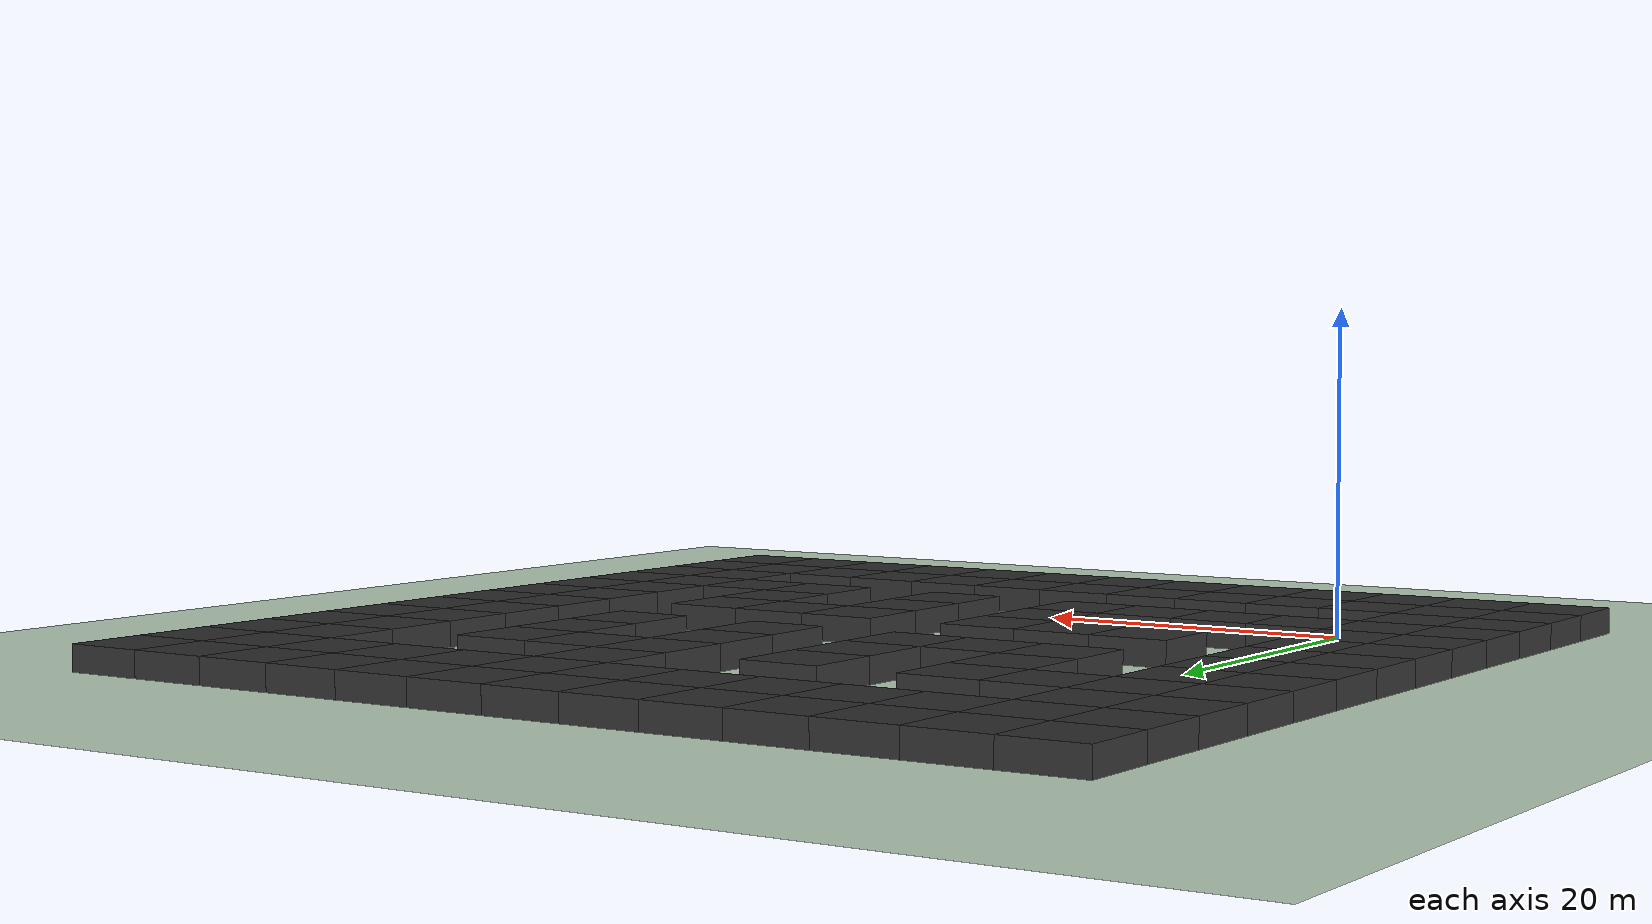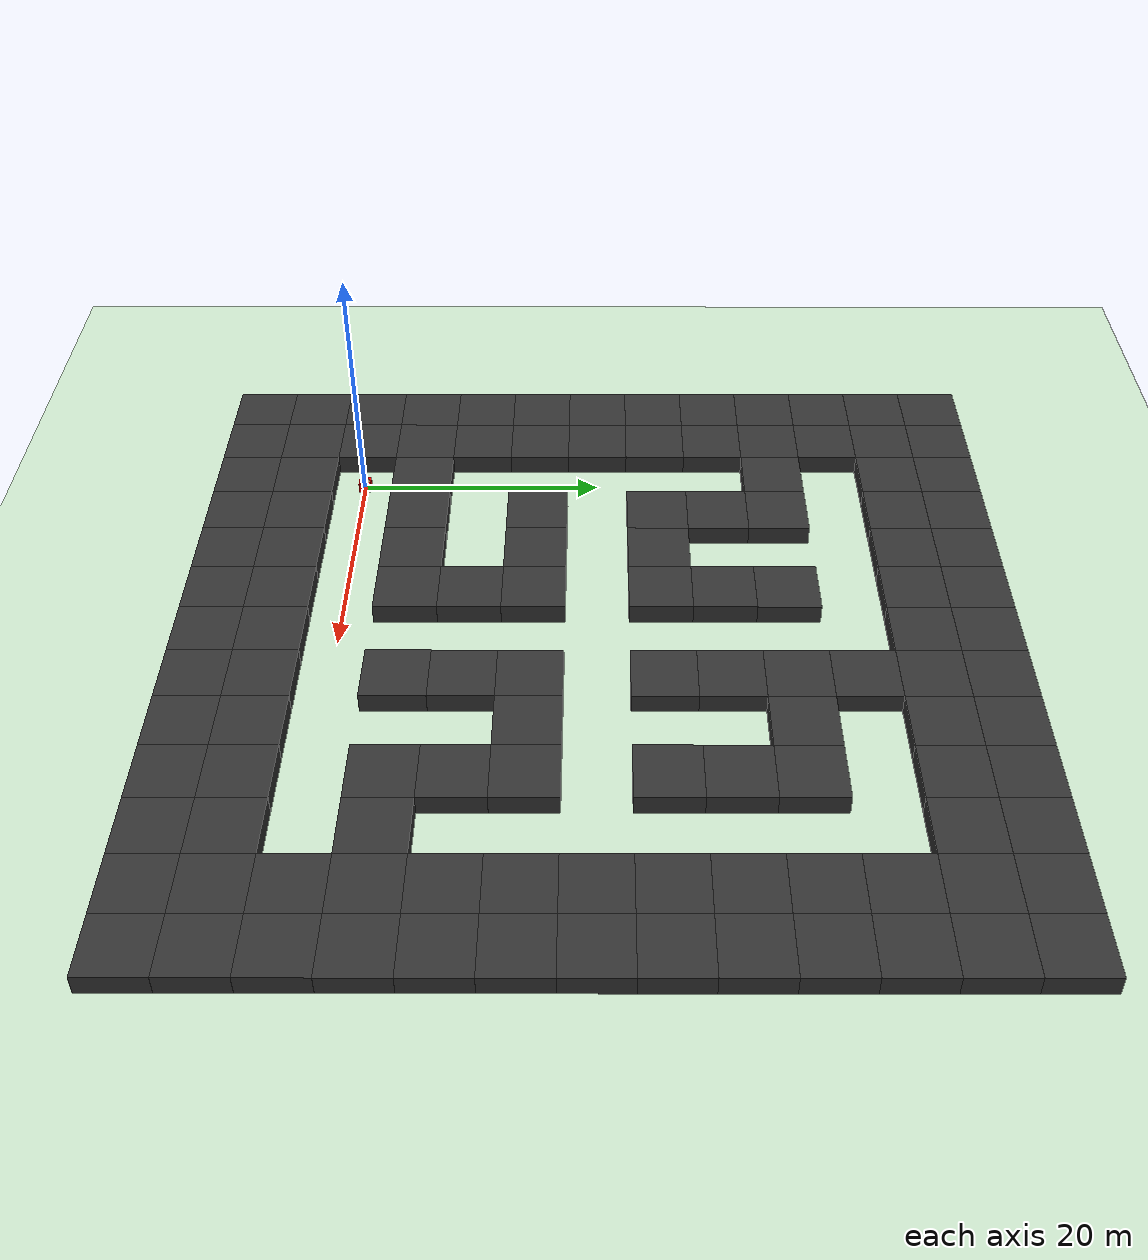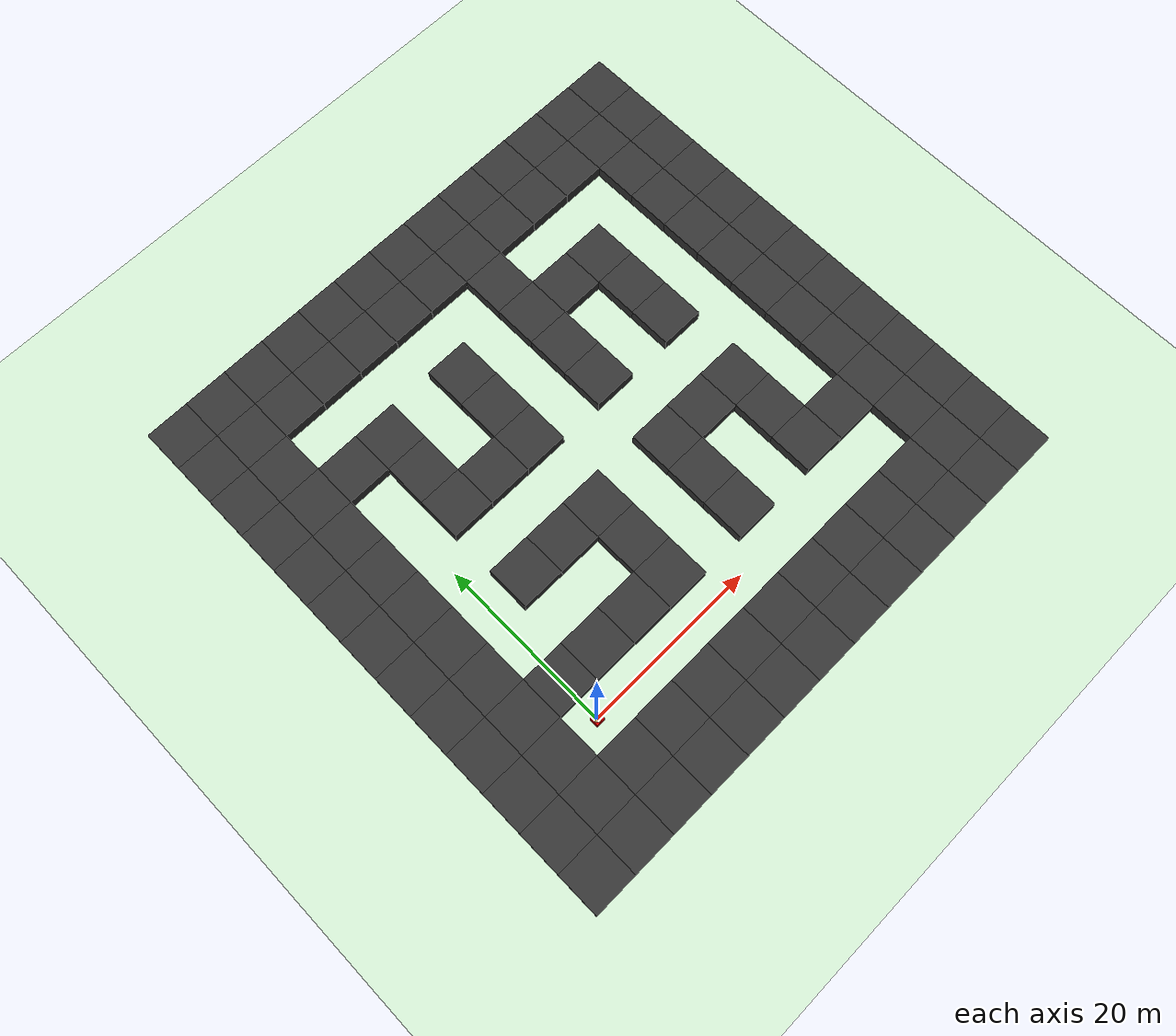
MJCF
<mujoco>
  <compiler angle="degree" coordinate="local" inertiafromgeom="true"/>
  <option integrator="RK4" timestep="0.02"/>
  <default>
    <joint armature="0" damping="0" limited="false"/>
    <geom conaffinity="0" condim="3" density="100" friction="1 0.5 0.5" margin="0" rgba="0.8 0.6 0.4 1"/>
  </default>
  <asset>
    <texture name="texplane" type="2d" builtin="flat" rgb1="0.95 0.95 0.95"  width="5120" height="5120"/>
    <material name="MatPlane" reflectance="0" texture="texplane" texrepeat="1 1" texuniform="true"  />
  </asset>
  <worldbody>
  <light directional="false" diffuse=".3 .3 .3" specular="0.3 0.3 0.3" pos="0 0 1000" />
  <camera name="top_view" mode="trackcom" pos="0 0 30" xyaxes="1 0 0 0 1 0" fovy = "45"/>

                <geom conaffinity="1" type="box" name="wall_0_0" size="2.5 2.5 1" pos="-10.0 -10.0 0.5" rgba="0.2 0.2 0.2 1" />

                <geom conaffinity="1" type="box" name="wall_0_1" size="2.5 2.5 1" pos="-10.0 -5.0 0.5" rgba="0.2 0.2 0.2 1" />

                <geom conaffinity="1" type="box" name="wall_0_2" size="2.5 2.5 1" pos="-10.0 0.0 0.5" rgba="0.2 0.2 0.2 1" />

                <geom conaffinity="1" type="box" name="wall_0_3" size="2.5 2.5 1" pos="-10.0 5.0 0.5" rgba="0.2 0.2 0.2 1" />

                <geom conaffinity="1" type="box" name="wall_0_4" size="2.5 2.5 1" pos="-10.0 10.0 0.5" rgba="0.2 0.2 0.2 1" />

                <geom conaffinity="1" type="box" name="wall_0_5" size="2.5 2.5 1" pos="-10.0 15.0 0.5" rgba="0.2 0.2 0.2 1" />

                <geom conaffinity="1" type="box" name="wall_0_6" size="2.5 2.5 1" pos="-10.0 20.0 0.5" rgba="0.2 0.2 0.2 1" />

                <geom conaffinity="1" type="box" name="wall_0_7" size="2.5 2.5 1" pos="-10.0 25.0 0.5" rgba="0.2 0.2 0.2 1" />

                <geom conaffinity="1" type="box" name="wall_0_8" size="2.5 2.5 1" pos="-10.0 30.0 0.5" rgba="0.2 0.2 0.2 1" />

                <geom conaffinity="1" type="box" name="wall_0_9" size="2.5 2.5 1" pos="-10.0 35.0 0.5" rgba="0.2 0.2 0.2 1" />

                <geom conaffinity="1" type="box" name="wall_0_10" size="2.5 2.5 1" pos="-10.0 40.0 0.5" rgba="0.2 0.2 0.2 1" />

                <geom conaffinity="1" type="box" name="wall_0_11" size="2.5 2.5 1" pos="-10.0 45.0 0.5" rgba="0.2 0.2 0.2 1" />

                <geom conaffinity="1" type="box" name="wall_0_12" size="2.5 2.5 1" pos="-10.0 50.0 0.5" rgba="0.2 0.2 0.2 1" />

                <geom conaffinity="1" type="box" name="wall_1_0" size="2.5 2.5 1" pos="-5.0 -10.0 0.5" rgba="0.2 0.2 0.2 1" />

                <geom conaffinity="1" type="box" name="wall_1_1" size="2.5 2.5 1" pos="-5.0 -5.0 0.5" rgba="0.2 0.2 0.2 1" />

                <geom conaffinity="1" type="box" name="wall_1_2" size="2.5 2.5 1" pos="-5.0 0.0 0.5" rgba="0.2 0.2 0.2 1" />

                <geom conaffinity="1" type="box" name="wall_1_3" size="2.5 2.5 1" pos="-5.0 5.0 0.5" rgba="0.2 0.2 0.2 1" />

                <geom conaffinity="1" type="box" name="wall_1_4" size="2.5 2.5 1" pos="-5.0 10.0 0.5" rgba="0.2 0.2 0.2 1" />

                <geom conaffinity="1" type="box" name="wall_1_5" size="2.5 2.5 1" pos="-5.0 15.0 0.5" rgba="0.2 0.2 0.2 1" />

                <geom conaffinity="1" type="box" name="wall_1_6" size="2.5 2.5 1" pos="-5.0 20.0 0.5" rgba="0.2 0.2 0.2 1" />

                <geom conaffinity="1" type="box" name="wall_1_7" size="2.5 2.5 1" pos="-5.0 25.0 0.5" rgba="0.2 0.2 0.2 1" />

                <geom conaffinity="1" type="box" name="wall_1_8" size="2.5 2.5 1" pos="-5.0 30.0 0.5" rgba="0.2 0.2 0.2 1" />

                <geom conaffinity="1" type="box" name="wall_1_9" size="2.5 2.5 1" pos="-5.0 35.0 0.5" rgba="0.2 0.2 0.2 1" />

                <geom conaffinity="1" type="box" name="wall_1_10" size="2.5 2.5 1" pos="-5.0 40.0 0.5" rgba="0.2 0.2 0.2 1" />

                <geom conaffinity="1" type="box" name="wall_1_11" size="2.5 2.5 1" pos="-5.0 45.0 0.5" rgba="0.2 0.2 0.2 1" />

                <geom conaffinity="1" type="box" name="wall_1_12" size="2.5 2.5 1" pos="-5.0 50.0 0.5" rgba="0.2 0.2 0.2 1" />

                <geom conaffinity="1" type="box" name="wall_2_0" size="2.5 2.5 1" pos="0.0 -10.0 0.5" rgba="0.2 0.2 0.2 1" />

                <geom conaffinity="1" type="box" name="wall_2_1" size="2.5 2.5 1" pos="0.0 -5.0 0.5" rgba="0.2 0.2 0.2 1" />

                <geom conaffinity="1" type="box" name="wall_2_3" size="2.5 2.5 1" pos="0.0 5.0 0.5" rgba="0.2 0.2 0.2 1" />

                <geom conaffinity="1" type="box" name="wall_2_9" size="2.5 2.5 1" pos="0.0 35.0 0.5" rgba="0.2 0.2 0.2 1" />

                <geom conaffinity="1" type="box" name="wall_2_11" size="2.5 2.5 1" pos="0.0 45.0 0.5" rgba="0.2 0.2 0.2 1" />

                <geom conaffinity="1" type="box" name="wall_2_12" size="2.5 2.5 1" pos="0.0 50.0 0.5" rgba="0.2 0.2 0.2 1" />

                <geom conaffinity="1" type="box" name="wall_3_0" size="2.5 2.5 1" pos="5.0 -10.0 0.5" rgba="0.2 0.2 0.2 1" />

                <geom conaffinity="1" type="box" name="wall_3_1" size="2.5 2.5 1" pos="5.0 -5.0 0.5" rgba="0.2 0.2 0.2 1" />

                <geom conaffinity="1" type="box" name="wall_3_3" size="2.5 2.5 1" pos="5.0 5.0 0.5" rgba="0.2 0.2 0.2 1" />

                <geom conaffinity="1" type="box" name="wall_3_5" size="2.5 2.5 1" pos="5.0 15.0 0.5" rgba="0.2 0.2 0.2 1" />

                <geom conaffinity="1" type="box" name="wall_3_7" size="2.5 2.5 1" pos="5.0 25.0 0.5" rgba="0.2 0.2 0.2 1" />

                <geom conaffinity="1" type="box" name="wall_3_8" size="2.5 2.5 1" pos="5.0 30.0 0.5" rgba="0.2 0.2 0.2 1" />

                <geom conaffinity="1" type="box" name="wall_3_9" size="2.5 2.5 1" pos="5.0 35.0 0.5" rgba="0.2 0.2 0.2 1" />

                <geom conaffinity="1" type="box" name="wall_3_11" size="2.5 2.5 1" pos="5.0 45.0 0.5" rgba="0.2 0.2 0.2 1" />

                <geom conaffinity="1" type="box" name="wall_3_12" size="2.5 2.5 1" pos="5.0 50.0 0.5" rgba="0.2 0.2 0.2 1" />

                <geom conaffinity="1" type="box" name="wall_4_0" size="2.5 2.5 1" pos="10.0 -10.0 0.5" rgba="0.2 0.2 0.2 1" />

                <geom conaffinity="1" type="box" name="wall_4_1" size="2.5 2.5 1" pos="10.0 -5.0 0.5" rgba="0.2 0.2 0.2 1" />

                <geom conaffinity="1" type="box" name="wall_4_3" size="2.5 2.5 1" pos="10.0 5.0 0.5" rgba="0.2 0.2 0.2 1" />

                <geom conaffinity="1" type="box" name="wall_4_5" size="2.5 2.5 1" pos="10.0 15.0 0.5" rgba="0.2 0.2 0.2 1" />

                <geom conaffinity="1" type="box" name="wall_4_7" size="2.5 2.5 1" pos="10.0 25.0 0.5" rgba="0.2 0.2 0.2 1" />

                <geom conaffinity="1" type="box" name="wall_4_11" size="2.5 2.5 1" pos="10.0 45.0 0.5" rgba="0.2 0.2 0.2 1" />

                <geom conaffinity="1" type="box" name="wall_4_12" size="2.5 2.5 1" pos="10.0 50.0 0.5" rgba="0.2 0.2 0.2 1" />

                <geom conaffinity="1" type="box" name="wall_5_0" size="2.5 2.5 1" pos="15.0 -10.0 0.5" rgba="0.2 0.2 0.2 1" />

                <geom conaffinity="1" type="box" name="wall_5_1" size="2.5 2.5 1" pos="15.0 -5.0 0.5" rgba="0.2 0.2 0.2 1" />

                <geom conaffinity="1" type="box" name="wall_5_3" size="2.5 2.5 1" pos="15.0 5.0 0.5" rgba="0.2 0.2 0.2 1" />

                <geom conaffinity="1" type="box" name="wall_5_4" size="2.5 2.5 1" pos="15.0 10.0 0.5" rgba="0.2 0.2 0.2 1" />

                <geom conaffinity="1" type="box" name="wall_5_5" size="2.5 2.5 1" pos="15.0 15.0 0.5" rgba="0.2 0.2 0.2 1" />

                <geom conaffinity="1" type="box" name="wall_5_7" size="2.5 2.5 1" pos="15.0 25.0 0.5" rgba="0.2 0.2 0.2 1" />

                <geom conaffinity="1" type="box" name="wall_5_8" size="2.5 2.5 1" pos="15.0 30.0 0.5" rgba="0.2 0.2 0.2 1" />

                <geom conaffinity="1" type="box" name="wall_5_9" size="2.5 2.5 1" pos="15.0 35.0 0.5" rgba="0.2 0.2 0.2 1" />

                <geom conaffinity="1" type="box" name="wall_5_11" size="2.5 2.5 1" pos="15.0 45.0 0.5" rgba="0.2 0.2 0.2 1" />

                <geom conaffinity="1" type="box" name="wall_5_12" size="2.5 2.5 1" pos="15.0 50.0 0.5" rgba="0.2 0.2 0.2 1" />

                <geom conaffinity="1" type="box" name="wall_6_0" size="2.5 2.5 1" pos="20.0 -10.0 0.5" rgba="0.2 0.2 0.2 1" />

                <geom conaffinity="1" type="box" name="wall_6_1" size="2.5 2.5 1" pos="20.0 -5.0 0.5" rgba="0.2 0.2 0.2 1" />

                <geom conaffinity="1" type="box" name="wall_6_11" size="2.5 2.5 1" pos="20.0 45.0 0.5" rgba="0.2 0.2 0.2 1" />

                <geom conaffinity="1" type="box" name="wall_6_12" size="2.5 2.5 1" pos="20.0 50.0 0.5" rgba="0.2 0.2 0.2 1" />

                <geom conaffinity="1" type="box" name="wall_7_0" size="2.5 2.5 1" pos="25.0 -10.0 0.5" rgba="0.2 0.2 0.2 1" />

                <geom conaffinity="1" type="box" name="wall_7_1" size="2.5 2.5 1" pos="25.0 -5.0 0.5" rgba="0.2 0.2 0.2 1" />

                <geom conaffinity="1" type="box" name="wall_7_3" size="2.5 2.5 1" pos="25.0 5.0 0.5" rgba="0.2 0.2 0.2 1" />

                <geom conaffinity="1" type="box" name="wall_7_4" size="2.5 2.5 1" pos="25.0 10.0 0.5" rgba="0.2 0.2 0.2 1" />

                <geom conaffinity="1" type="box" name="wall_7_5" size="2.5 2.5 1" pos="25.0 15.0 0.5" rgba="0.2 0.2 0.2 1" />

                <geom conaffinity="1" type="box" name="wall_7_7" size="2.5 2.5 1" pos="25.0 25.0 0.5" rgba="0.2 0.2 0.2 1" />

                <geom conaffinity="1" type="box" name="wall_7_8" size="2.5 2.5 1" pos="25.0 30.0 0.5" rgba="0.2 0.2 0.2 1" />

                <geom conaffinity="1" type="box" name="wall_7_9" size="2.5 2.5 1" pos="25.0 35.0 0.5" rgba="0.2 0.2 0.2 1" />

                <geom conaffinity="1" type="box" name="wall_7_10" size="2.5 2.5 1" pos="25.0 40.0 0.5" rgba="0.2 0.2 0.2 1" />

                <geom conaffinity="1" type="box" name="wall_7_11" size="2.5 2.5 1" pos="25.0 45.0 0.5" rgba="0.2 0.2 0.2 1" />

                <geom conaffinity="1" type="box" name="wall_7_12" size="2.5 2.5 1" pos="25.0 50.0 0.5" rgba="0.2 0.2 0.2 1" />

                <geom conaffinity="1" type="box" name="wall_8_0" size="2.5 2.5 1" pos="30.0 -10.0 0.5" rgba="0.2 0.2 0.2 1" />

                <geom conaffinity="1" type="box" name="wall_8_1" size="2.5 2.5 1" pos="30.0 -5.0 0.5" rgba="0.2 0.2 0.2 1" />

                <geom conaffinity="1" type="box" name="wall_8_5" size="2.5 2.5 1" pos="30.0 15.0 0.5" rgba="0.2 0.2 0.2 1" />

                <geom conaffinity="1" type="box" name="wall_8_9" size="2.5 2.5 1" pos="30.0 35.0 0.5" rgba="0.2 0.2 0.2 1" />

                <geom conaffinity="1" type="box" name="wall_8_11" size="2.5 2.5 1" pos="30.0 45.0 0.5" rgba="0.2 0.2 0.2 1" />

                <geom conaffinity="1" type="box" name="wall_8_12" size="2.5 2.5 1" pos="30.0 50.0 0.5" rgba="0.2 0.2 0.2 1" />

                <geom conaffinity="1" type="box" name="wall_9_0" size="2.5 2.5 1" pos="35.0 -10.0 0.5" rgba="0.2 0.2 0.2 1" />

                <geom conaffinity="1" type="box" name="wall_9_1" size="2.5 2.5 1" pos="35.0 -5.0 0.5" rgba="0.2 0.2 0.2 1" />

                <geom conaffinity="1" type="box" name="wall_9_3" size="2.5 2.5 1" pos="35.0 5.0 0.5" rgba="0.2 0.2 0.2 1" />

                <geom conaffinity="1" type="box" name="wall_9_4" size="2.5 2.5 1" pos="35.0 10.0 0.5" rgba="0.2 0.2 0.2 1" />

                <geom conaffinity="1" type="box" name="wall_9_5" size="2.5 2.5 1" pos="35.0 15.0 0.5" rgba="0.2 0.2 0.2 1" />

                <geom conaffinity="1" type="box" name="wall_9_7" size="2.5 2.5 1" pos="35.0 25.0 0.5" rgba="0.2 0.2 0.2 1" />

                <geom conaffinity="1" type="box" name="wall_9_8" size="2.5 2.5 1" pos="35.0 30.0 0.5" rgba="0.2 0.2 0.2 1" />

                <geom conaffinity="1" type="box" name="wall_9_9" size="2.5 2.5 1" pos="35.0 35.0 0.5" rgba="0.2 0.2 0.2 1" />

                <geom conaffinity="1" type="box" name="wall_9_11" size="2.5 2.5 1" pos="35.0 45.0 0.5" rgba="0.2 0.2 0.2 1" />

                <geom conaffinity="1" type="box" name="wall_9_12" size="2.5 2.5 1" pos="35.0 50.0 0.5" rgba="0.2 0.2 0.2 1" />

                <geom conaffinity="1" type="box" name="wall_10_0" size="2.5 2.5 1" pos="40.0 -10.0 0.5" rgba="0.2 0.2 0.2 1" />

                <geom conaffinity="1" type="box" name="wall_10_1" size="2.5 2.5 1" pos="40.0 -5.0 0.5" rgba="0.2 0.2 0.2 1" />

                <geom conaffinity="1" type="box" name="wall_10_3" size="2.5 2.5 1" pos="40.0 5.0 0.5" rgba="0.2 0.2 0.2 1" />

                <geom conaffinity="1" type="box" name="wall_10_11" size="2.5 2.5 1" pos="40.0 45.0 0.5" rgba="0.2 0.2 0.2 1" />

                <geom conaffinity="1" type="box" name="wall_10_12" size="2.5 2.5 1" pos="40.0 50.0 0.5" rgba="0.2 0.2 0.2 1" />

                <geom conaffinity="1" type="box" name="wall_11_0" size="2.5 2.5 1" pos="45.0 -10.0 0.5" rgba="0.2 0.2 0.2 1" />

                <geom conaffinity="1" type="box" name="wall_11_1" size="2.5 2.5 1" pos="45.0 -5.0 0.5" rgba="0.2 0.2 0.2 1" />

                <geom conaffinity="1" type="box" name="wall_11_2" size="2.5 2.5 1" pos="45.0 0.0 0.5" rgba="0.2 0.2 0.2 1" />

                <geom conaffinity="1" type="box" name="wall_11_3" size="2.5 2.5 1" pos="45.0 5.0 0.5" rgba="0.2 0.2 0.2 1" />

                <geom conaffinity="1" type="box" name="wall_11_4" size="2.5 2.5 1" pos="45.0 10.0 0.5" rgba="0.2 0.2 0.2 1" />

                <geom conaffinity="1" type="box" name="wall_11_5" size="2.5 2.5 1" pos="45.0 15.0 0.5" rgba="0.2 0.2 0.2 1" />

                <geom conaffinity="1" type="box" name="wall_11_6" size="2.5 2.5 1" pos="45.0 20.0 0.5" rgba="0.2 0.2 0.2 1" />

                <geom conaffinity="1" type="box" name="wall_11_7" size="2.5 2.5 1" pos="45.0 25.0 0.5" rgba="0.2 0.2 0.2 1" />

                <geom conaffinity="1" type="box" name="wall_11_8" size="2.5 2.5 1" pos="45.0 30.0 0.5" rgba="0.2 0.2 0.2 1" />

                <geom conaffinity="1" type="box" name="wall_11_9" size="2.5 2.5 1" pos="45.0 35.0 0.5" rgba="0.2 0.2 0.2 1" />

                <geom conaffinity="1" type="box" name="wall_11_10" size="2.5 2.5 1" pos="45.0 40.0 0.5" rgba="0.2 0.2 0.2 1" />

                <geom conaffinity="1" type="box" name="wall_11_11" size="2.5 2.5 1" pos="45.0 45.0 0.5" rgba="0.2 0.2 0.2 1" />

                <geom conaffinity="1" type="box" name="wall_11_12" size="2.5 2.5 1" pos="45.0 50.0 0.5" rgba="0.2 0.2 0.2 1" />

                <geom conaffinity="1" type="box" name="wall_12_0" size="2.5 2.5 1" pos="50.0 -10.0 0.5" rgba="0.2 0.2 0.2 1" />

                <geom conaffinity="1" type="box" name="wall_12_1" size="2.5 2.5 1" pos="50.0 -5.0 0.5" rgba="0.2 0.2 0.2 1" />

                <geom conaffinity="1" type="box" name="wall_12_2" size="2.5 2.5 1" pos="50.0 0.0 0.5" rgba="0.2 0.2 0.2 1" />

                <geom conaffinity="1" type="box" name="wall_12_3" size="2.5 2.5 1" pos="50.0 5.0 0.5" rgba="0.2 0.2 0.2 1" />

                <geom conaffinity="1" type="box" name="wall_12_4" size="2.5 2.5 1" pos="50.0 10.0 0.5" rgba="0.2 0.2 0.2 1" />

                <geom conaffinity="1" type="box" name="wall_12_5" size="2.5 2.5 1" pos="50.0 15.0 0.5" rgba="0.2 0.2 0.2 1" />

                <geom conaffinity="1" type="box" name="wall_12_6" size="2.5 2.5 1" pos="50.0 20.0 0.5" rgba="0.2 0.2 0.2 1" />

                <geom conaffinity="1" type="box" name="wall_12_7" size="2.5 2.5 1" pos="50.0 25.0 0.5" rgba="0.2 0.2 0.2 1" />

                <geom conaffinity="1" type="box" name="wall_12_8" size="2.5 2.5 1" pos="50.0 30.0 0.5" rgba="0.2 0.2 0.2 1" />

                <geom conaffinity="1" type="box" name="wall_12_9" size="2.5 2.5 1" pos="50.0 35.0 0.5" rgba="0.2 0.2 0.2 1" />

                <geom conaffinity="1" type="box" name="wall_12_10" size="2.5 2.5 1" pos="50.0 40.0 0.5" rgba="0.2 0.2 0.2 1" />

                <geom conaffinity="1" type="box" name="wall_12_11" size="2.5 2.5 1" pos="50.0 45.0 0.5" rgba="0.2 0.2 0.2 1" />

                <geom conaffinity="1" type="box" name="wall_12_12" size="2.5 2.5 1" pos="50.0 50.0 0.5" rgba="0.2 0.2 0.2 1" />

  <geom name="Goal" pos="0 0 0.25" size="0.5 0.5 0.5" type="box" rgba="1 0 0 1"/>
    <light cutoff="100" diffuse="1 1 1" dir="-0 0 -1.3" directional="true" exponent="1" pos="0 0 1.3" specular=".1 .1 .1"/>
    <geom conaffinity="1" condim="3" material="MatPlane" name="floor" pos="0 0 0" rgba="0.8 0.9 0.8 1" size="300 300 30" type="plane"/>
    <body name="torso" pos="0 0 0">

      <geom name="pointbody" pos="0 0 0.5" size="0.5" type="sphere"/>
      <geom name="pointarrow" pos="0.6 0 0.5" size="0.5 0.1 0.1" rgba="1 0 0 1" type="box"/>
      <joint axis="1 0 0" name="ballx" pos="0 0 0" type="slide"/>
      <joint axis="0 1 0" name="bally" pos="0 0 0" type="slide"/>
      <joint axis="0 0 1" limited="false" name="rot" pos="0 0 0" type="hinge"/>
    </body>
  </worldbody>
  <actuator>
    <!-- Those are just dummy actuators for providing ranges -->
    <motor ctrllimited="true" ctrlrange="-0.2 0.2" joint="ballx"/>
    <motor ctrllimited="true" ctrlrange="-0.2 0.2" joint="rot"/>
  </actuator>
</mujoco>
